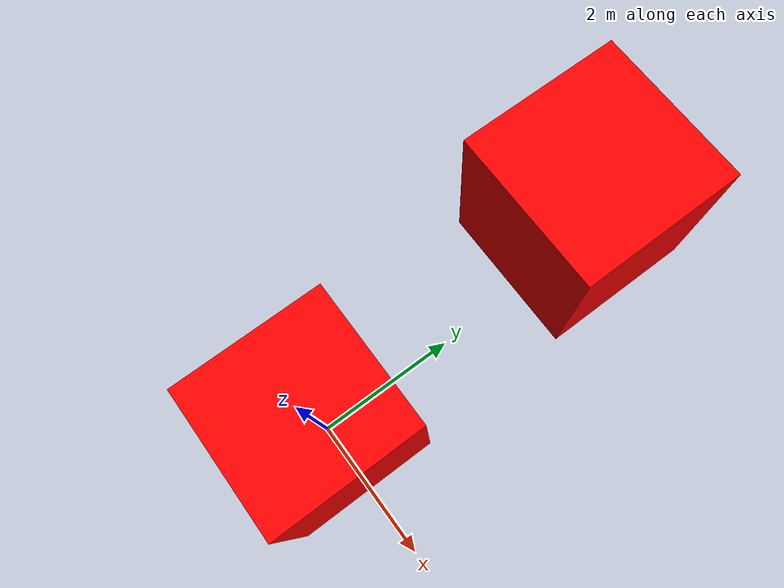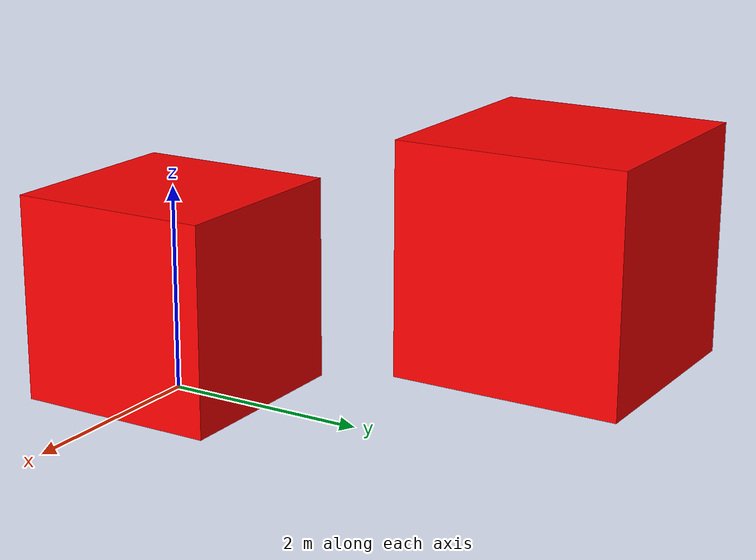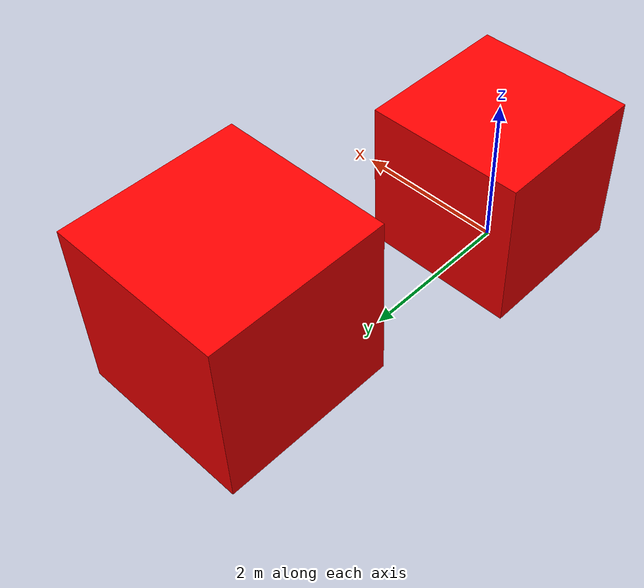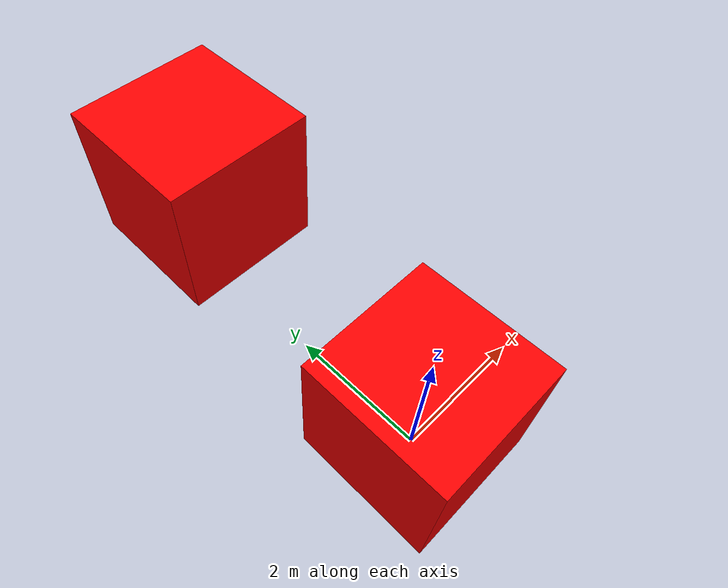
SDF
<?xml version="1.0" ?>
<sdf version="1.6">
  <world name="wind_demo">
    <plugin
      filename="gz-sim-apply-link-wrench-system"
      name="gz::sim::systems::ApplyLinkWrench">
    </plugin>

    <gravity>0 0 0</gravity>

    <physics name="fast" type="ignored">
      <real_time_factor>0</real_time_factor>
    </physics>

    <plugin
      filename="gz-sim-physics-system"
      name="gz::sim::systems::Physics">
    </plugin>
    <plugin
      filename="gz-sim-user-commands-system"
      name="gz::sim::systems::UserCommands">
    </plugin>

    <plugin
      filename="gz-sim-wind-effects-system"
      name="gz::sim::systems::WindEffects">
      <force_approximation_scaling_factor>1</force_approximation_scaling_factor>
      <horizontal>
        <magnitude>
          <time_for_rise>1</time_for_rise>
          <sin>
            <amplitude_percent>0.05</amplitude_percent>
            <period>60</period>
          </sin>
        </magnitude>
        <direction>
          <time_for_rise>1</time_for_rise>
          <sin>
            <amplitude>5</amplitude>
            <period>20</period>
          </sin>
        </direction>
      </horizontal>
    </plugin>

    <wind>
      <linear_velocity>10 0 10</linear_velocity>
    </wind>

    <model name="wind_test1">
      <enable_wind>true</enable_wind>
      <link name="box_test1">
        <pose>0 0 1 0 0 0</pose>
        <inertial>
          <mass>1</mass>
          <inertia>
            <ixx>0.667</ixx>
            <ixy>0</ixy>
            <ixz>0</ixz>
            <iyy>0.667</iyy>
            <iyz>0</iyz>
            <izz>0.667</izz>
          </inertia>
        </inertial>
        <collision name="collision">
          <geometry>
            <box>
              <size>2.0 2.0 2.0</size>
            </box>
          </geometry>
          <surface>
            <friction>
              <ode>
                <mu>0.0</mu>
                <mu2>0.0</mu2>
              </ode>
            </friction>
          </surface>
        </collision>
        <visual name="visual">
          <geometry>
            <box>
              <size>2.0 2.0 2.0</size>
            </box>
          </geometry>
          <material>
            <ambient>1.0 0.0 0.0 1</ambient>
            <diffuse>1.0 0.0 0.0 1</diffuse>
            <specular>1.0 0.0 0.0 1</specular>
          </material>
        </visual>
      </link>
    </model>

    <model name="wind_test2">
      <pose>0 4 1 0 0 0</pose>
      <link name="box_test2">
        <enable_wind>true</enable_wind>
        <pose>0 0 1 0 0 0</pose>
        <inertial>
          <mass>1</mass>
          <inertia>
            <ixx>0.667</ixx>
            <ixy>0</ixy>
            <ixz>0</ixz>
            <iyy>0.667</iyy>
            <iyz>0</iyz>
            <izz>0.667</izz>
          </inertia>
        </inertial>
        <collision name="collision">
          <geometry>
            <box>
              <size>2.0 2.0 2.0</size>
            </box>
          </geometry>
          <surface>
            <friction>
              <ode>
                <mu>0.0</mu>
                <mu2>0.0</mu2>
              </ode>
            </friction>
          </surface>
        </collision>
        <visual name="visual">
          <geometry>
            <box>
              <size>2.0 2.0 2.0</size>
            </box>
          </geometry>
          <material>
            <ambient>1.0 0.0 0.0 1</ambient>
            <diffuse>1.0 0.0 0.0 1</diffuse>
            <specular>1.0 0.0 0.0 1</specular>
          </material>
        </visual>
      </link>
    </model>
  </world>
</sdf>
